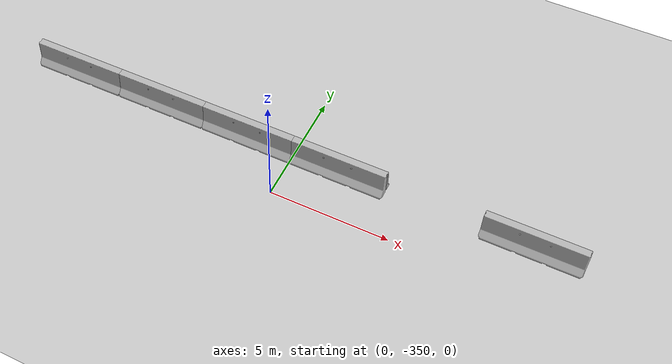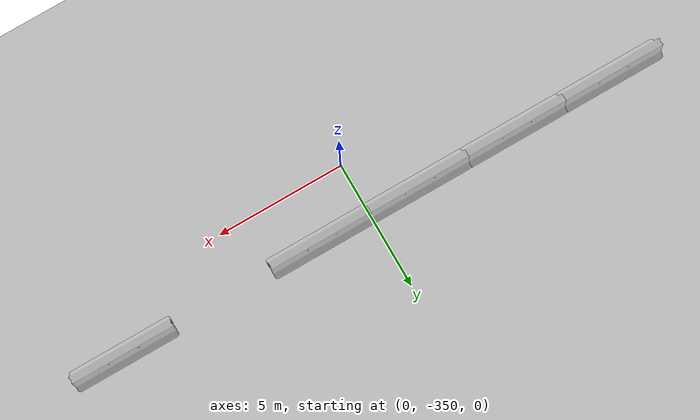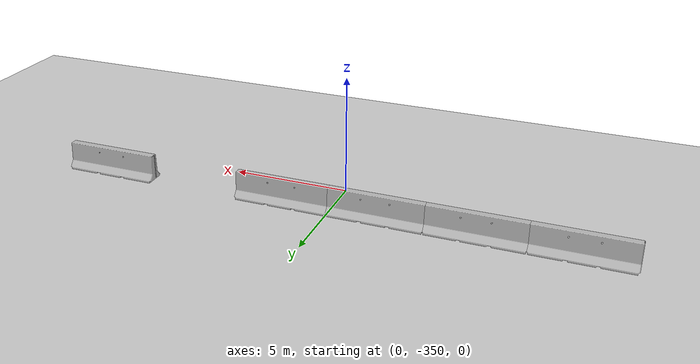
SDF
<sdf version="1.6">
 <world name="default">
  <model name="jersey_barrier_clone_clone_clone_clone">
   <static>1</static>
   <link name="link">
    <visual name="visual">
     <geometry><mesh><uri>model://jersey_barrier/meshes/jersey_barrier.dae</uri></mesh></geometry>
    </visual>
    <collision name="upright">
     <pose>0 0 0.5715 0 -0 0</pose>
     <geometry><box><size>4.06542 0.3063 1.143</size></box></geometry>
    </collision>
    <collision name="base">
     <pose>0 0 0.032258 0 -0 0</pose>
     <geometry><box><size>4.06542 0.8107 0.064516</size></box></geometry>
    </collision>
    <collision name="base2">
     <pose>0 0 0.1 0 -0 0</pose>
     <geometry><box><size>4.06542 0.65 0.1</size></box></geometry>
    </collision>
    <collision name="base3">
     <pose>0 0 0.2 0 -0 0</pose>
     <geometry><box><size>4.06542 0.5 0.1</size></box></geometry>
    </collision>
    <collision name="left-angle">
     <pose>0 -0.224 0.2401 0.9 -0 0</pose>
     <geometry><box><size>4.06542 0.5 0.064516</size></box></geometry>
    </collision>
    <collision name="right-angle">
     <pose>0 0.224 0.2401 -0.9 0 0</pose>
     <geometry><box><size>4.06542 0.5 0.064516</size></box></geometry>
    </collision>
   </link>
   <pose>-10 -348 0 0 -0 0</pose>
  </model>
  <model name="jersey_barrier_clone_clone_clone_clone_clone">
   <static>1</static>
   <link name="link">
    <visual name="visual">
     <geometry><mesh><uri>model://jersey_barrier/meshes/jersey_barrier.dae</uri></mesh></geometry>
    </visual>
    <collision name="upright">
     <pose>0 0 0.5715 0 -0 0</pose>
     <geometry><box><size>4.06542 0.3063 1.143</size></box></geometry>
    </collision>
    <collision name="base">
     <pose>0 0 0.032258 0 -0 0</pose>
     <geometry><box><size>4.06542 0.8107 0.064516</size></box></geometry>
    </collision>
    <collision name="base2">
     <pose>0 0 0.1 0 -0 0</pose>
     <geometry><box><size>4.06542 0.65 0.1</size></box></geometry>
    </collision>
    <collision name="base3">
     <pose>0 0 0.2 0 -0 0</pose>
     <geometry><box><size>4.06542 0.5 0.1</size></box></geometry>
    </collision>
    <collision name="left-angle">
     <pose>0 -0.224 0.2401 0.9 -0 0</pose>
     <geometry><box><size>4.06542 0.5 0.064516</size></box></geometry>
    </collision>
    <collision name="right-angle">
     <pose>0 0.224 0.2401 -0.9 0 0</pose>
     <geometry><box><size>4.06542 0.5 0.064516</size></box></geometry>
    </collision>
   </link>
   <pose>-6 -348 0 0 -0 0</pose>
  </model>
  <model name="jersey_barrier_clone_clone_clone_clone_clone_clone">
   <static>1</static>
   <link name="link">
    <visual name="visual">
     <geometry><mesh><uri>model://jersey_barrier/meshes/jersey_barrier.dae</uri></mesh></geometry>
    </visual>
    <collision name="upright">
     <pose>0 0 0.5715 0 -0 0</pose>
     <geometry><box><size>4.06542 0.3063 1.143</size></box></geometry>
    </collision>
    <collision name="base">
     <pose>0 0 0.032258 0 -0 0</pose>
     <geometry><box><size>4.06542 0.8107 0.064516</size></box></geometry>
    </collision>
    <collision name="base2">
     <pose>0 0 0.1 0 -0 0</pose>
     <geometry><box><size>4.06542 0.65 0.1</size></box></geometry>
    </collision>
    <collision name="base3">
     <pose>0 0 0.2 0 -0 0</pose>
     <geometry><box><size>4.06542 0.5 0.1</size></box></geometry>
    </collision>
    <collision name="left-angle">
     <pose>0 -0.224 0.2401 0.9 -0 0</pose>
     <geometry><box><size>4.06542 0.5 0.064516</size></box></geometry>
    </collision>
    <collision name="right-angle">
     <pose>0 0.224 0.2401 -0.9 0 0</pose>
     <geometry><box><size>4.06542 0.5 0.064516</size></box></geometry>
    </collision>
   </link>
   <pose>-2 -348 0 0 -0 0</pose>
  </model>
  <model name="jersey_barrier_clone_clone_clone_clone_clone_clone_clone">
   <static>1</static>
   <link name="link">
    <visual name="visual">
     <geometry><mesh><uri>model://jersey_barrier/meshes/jersey_barrier.dae</uri></mesh></geometry>
    </visual>
    <collision name="upright">
     <pose>0 0 0.5715 0 -0 0</pose>
     <geometry><box><size>4.06542 0.3063 1.143</size></box></geometry>
    </collision>
    <collision name="base">
     <pose>0 0 0.032258 0 -0 0</pose>
     <geometry><box><size>4.06542 0.8107 0.064516</size></box></geometry>
    </collision>
    <collision name="base2">
     <pose>0 0 0.1 0 -0 0</pose>
     <geometry><box><size>4.06542 0.65 0.1</size></box></geometry>
    </collision>
    <collision name="base3">
     <pose>0 0 0.2 0 -0 0</pose>
     <geometry><box><size>4.06542 0.5 0.1</size></box></geometry>
    </collision>
    <collision name="left-angle">
     <pose>0 -0.224 0.2401 0.9 -0 0</pose>
     <geometry><box><size>4.06542 0.5 0.064516</size></box></geometry>
    </collision>
    <collision name="right-angle">
     <pose>0 0.224 0.2401 -0.9 0 0</pose>
     <geometry><box><size>4.06542 0.5 0.064516</size></box></geometry>
    </collision>
   </link>
   <pose>2 -348 0 0 -0 0</pose>
  </model>
  <model name="jersey_barrier_clone_clone_clone_clone_clone_clone_clone_clone">
   <static>1</static>
   <link name="link">
    <visual name="visual">
     <geometry><mesh><uri>model://jersey_barrier/meshes/jersey_barrier.dae</uri></mesh></geometry>
    </visual>
    <collision name="upright">
     <pose>0 0 0.5715 0 -0 0</pose>
     <geometry><box><size>4.06542 0.3063 1.143</size></box></geometry>
    </collision>
    <collision name="base">
     <pose>0 0 0.032258 0 -0 0</pose>
     <geometry><box><size>4.06542 0.8107 0.064516</size></box></geometry>
    </collision>
    <collision name="base2">
     <pose>0 0 0.1 0 -0 0</pose>
     <geometry><box><size>4.06542 0.65 0.1</size></box></geometry>
    </collision>
    <collision name="base3">
     <pose>0 0 0.2 0 -0 0</pose>
     <geometry><box><size>4.06542 0.5 0.1</size></box></geometry>
    </collision>
    <collision name="left-angle">
     <pose>0 -0.224 0.2401 0.9 -0 0</pose>
     <geometry><box><size>4.06542 0.5 0.064516</size></box></geometry>
    </collision>
    <collision name="right-angle">
     <pose>0 0.224 0.2401 -0.9 0 0</pose>
     <geometry><box><size>4.06542 0.5 0.064516</size></box></geometry>
    </collision>
   </link>
   <pose>2 -348 0 0 -0 0</pose>
  </model>
  <model name="jersey_barrier_clone_clone_clone_clone_clone_clone_clone_clone_0">
   <static>1</static>
   <link name="link">
    <visual name="visual">
     <geometry><mesh><uri>model://jersey_barrier/meshes/jersey_barrier.dae</uri></mesh></geometry>
    </visual>
    <collision name="upright">
     <pose>0 0 0.5715 0 -0 0</pose>
     <geometry><box><size>4.06542 0.3063 1.143</size></box></geometry>
    </collision>
    <collision name="base">
     <pose>0 0 0.032258 0 -0 0</pose>
     <geometry><box><size>4.06542 0.8107 0.064516</size></box></geometry>
    </collision>
    <collision name="base2">
     <pose>0 0 0.1 0 -0 0</pose>
     <geometry><box><size>4.06542 0.65 0.1</size></box></geometry>
    </collision>
    <collision name="base3">
     <pose>0 0 0.2 0 -0 0</pose>
     <geometry><box><size>4.06542 0.5 0.1</size></box></geometry>
    </collision>
    <collision name="left-angle">
     <pose>0 -0.224 0.2401 0.9 -0 0</pose>
     <geometry><box><size>4.06542 0.5 0.064516</size></box></geometry>
    </collision>
    <collision name="right-angle">
     <pose>0 0.224 0.2401 -0.9 0 0</pose>
     <geometry><box><size>4.06542 0.5 0.064516</size></box></geometry>
    </collision>
   </link>
   <pose>10 -348 0 0 -0 0</pose>
  </model>
  <model name="ground_plane">
   <static>1</static>
   <link name="link">
    <collision name="collision">
     <geometry><plane><normal>0 0 1</normal><size>100 100</size></plane></geometry>
     <surface>
      <contact><collide_bitmask>65535</collide_bitmask></contact>
      <friction><ode><mu>100</mu><mu2>50</mu2></ode></friction>
     </surface>
    </collision>
    <visual name="visual">
     <cast_shadows>0</cast_shadows>
     <geometry><plane><normal>0 0 1</normal><size>100 100</size></plane></geometry>
     <material>
      <script><uri>file://media/materials/scripts/gazebo.material</uri><name>Gazebo/Grey</name></script>
     </material>
    </visual>
   </link>
   <pose>-12.5153 -61.1689 0 0 -0 0</pose>
  </model>
 </world>
</sdf>
